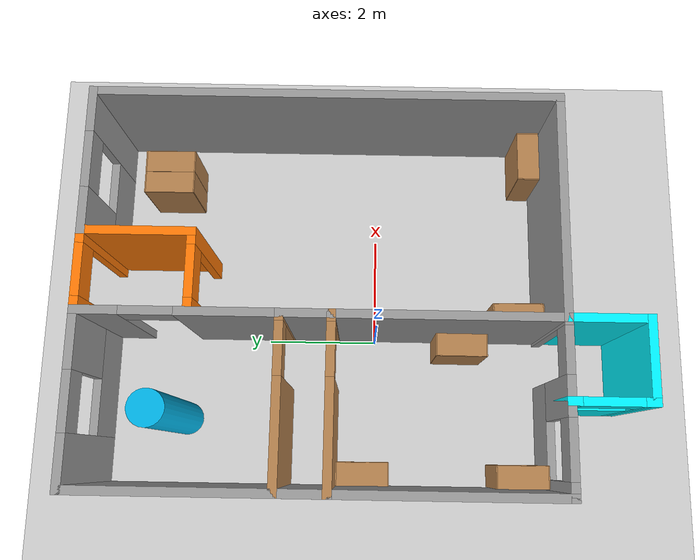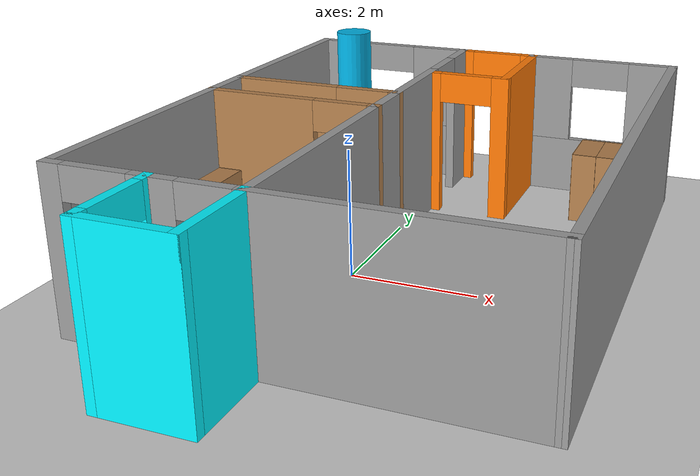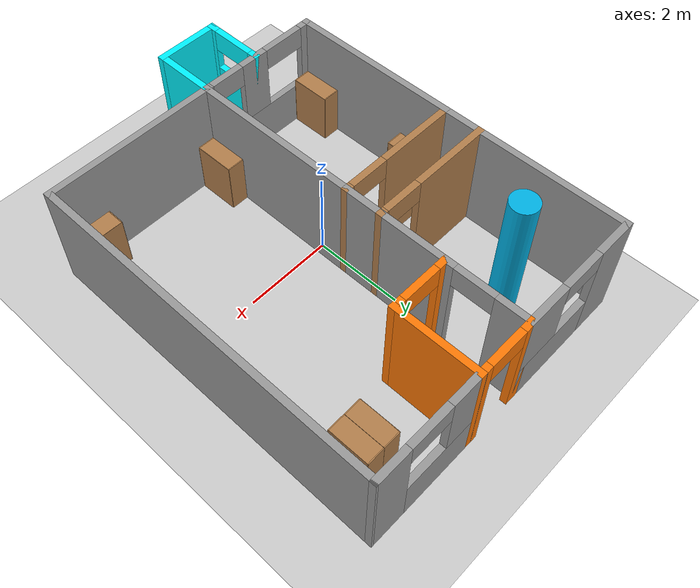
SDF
<sdf version="1.6">
 <world name="default">
  <plugin name="hello" filename="libhello.so"/>
  <light name="sun" type="directional">
   <pose>0 0 10 0 -0 0</pose>
   <diffuse>0.8 0.8 0.8 1</diffuse>
   <specular>0.2 0.2 0.2 1</specular>
   <attenuation>
    <range>1000</range>
    <constant>0.9</constant>
    <linear>0.01</linear>
    <quadratic>0.001</quadratic>
   </attenuation>
   <direction>-0.5 0.1 -0.9</direction>
  </light>
  <model name="ground_plane">
   <static>1</static>
   <link name="link">
    <collision name="collision">
     <geometry><plane><normal>0 0 1</normal><size>100 100</size></plane></geometry>
     <surface><friction><ode><mu>100</mu><mu2>50</mu2></ode></friction></surface>
    </collision>
    <visual name="visual">
     <cast_shadows>0</cast_shadows>
     <geometry><plane><normal>0 0 1</normal><size>100 100</size></plane></geometry>
     <material>
      <script><uri>file://media/materials/scripts/gazebo.material</uri><name>Gazebo/Grey</name></script>
     </material>
    </visual>
   </link>
  </model>
  <gravity>0 0 -9.8</gravity>
  <magnetic_field>6e-06 2.3e-05 -4.2e-05</magnetic_field>
  <atmosphere type="adiabatic"/>
  <physics name="default_physics" default="0" type="ode">
   <max_step_size>0.001</max_step_size>
   <real_time_factor>1</real_time_factor>
   <real_time_update_rate>1000</real_time_update_rate>
  </physics>
  <scene><ambient>0.4 0.4 0.4 1</ambient><background>0.7 0.7 0.7 1</background><shadows>1</shadows></scene>
  <spherical_coordinates>
   <surface_model>EARTH_WGS84</surface_model>
   <latitude_deg>0</latitude_deg>
   <longitude_deg>0</longitude_deg>
   <elevation>0</elevation>
   <heading_deg>0</heading_deg>
  </spherical_coordinates>
  <model name="cozyapato">
   <pose>0.612099 0.24558 0 0 -0 0</pose>
   <link name="Wall_100">
    <collision name="Wall_100_Collision">
     <geometry><box><size>1.5 0.15 2.5</size></box></geometry>
     <pose>0 0 1.25 0 -0 0</pose>
    </collision>
    <visual name="Wall_100_Visual">
     <pose>0 0 1.25 0 -0 0</pose>
     <geometry><box><size>1.5 0.15 2.5</size></box></geometry>
     <material>
      <script><uri>file://media/materials/scripts/gazebo.material</uri><name>Gazebo/Grey</name></script>
      <ambient>0 0.952941 1 1</ambient>
     </material>
     <meta><layer>0</layer></meta>
    </visual>
    <pose>-0.499933 -4.02501 0 0 0 -1.5708</pose>
   </link>
   <link name="Wall_101">
    <collision name="Wall_101_Collision">
     <geometry><box><size>1.5 0.15 2.5</size></box></geometry>
     <pose>0 0 1.25 0 -0 0</pose>
    </collision>
    <visual name="Wall_101_Visual">
     <pose>0 0 1.25 0 -0 0</pose>
     <geometry><box><size>1.5 0.15 2.5</size></box></geometry>
     <material>
      <script><uri>file://media/materials/scripts/gazebo.material</uri><name>Gazebo/Grey</name></script>
      <ambient>0 0.952941 1 1</ambient>
     </material>
     <meta><layer>0</layer></meta>
    </visual>
    <pose>-1.17493 -4.70001 0 0 -0 3.14159</pose>
   </link>
   <link name="Wall_102">
    <pose>-1.84993 -4.02501 0 0 -0 1.5708</pose>
    <visual name="Wall_102_Visual_0">
     <pose>-0.623422 0 1.25 0 -0 0</pose>
     <geometry><box><size>0.253156 0.15 2.5</size></box></geometry>
     <material>
      <script><uri>file://media/materials/scripts/gazebo.material</uri><name>Gazebo/Grey</name></script>
      <ambient>0 0.952941 1 1</ambient>
     </material>
     <meta><layer>0</layer></meta>
    </visual>
    <collision name="Wall_102_Collision_0">
     <geometry><box><size>0.253156 0.15 2.5</size></box></geometry>
     <pose>-0.623422 0 1.25 0 -0 0</pose>
    </collision>
    <visual name="Wall_102_Visual_1">
     <pose>0.126578 0 0.75 0 -0 0</pose>
     <geometry><box><size>1.24684 0.15 1.5</size></box></geometry>
     <material>
      <script><uri>file://media/materials/scripts/gazebo.material</uri><name>Gazebo/Grey</name></script>
      <ambient>0 0.952941 1 1</ambient>
     </material>
     <meta><layer>0</layer></meta>
    </visual>
    <collision name="Wall_102_Collision_1">
     <geometry><box><size>1.24684 0.15 1.5</size></box></geometry>
     <pose>0.126578 0 0.75 0 -0 0</pose>
    </collision>
    <visual name="Wall_102_Visual_2">
     <pose>0.626578 0 2 0 -0 0</pose>
     <geometry><box><size>0.246844 0.15 1</size></box></geometry>
     <material>
      <script><uri>file://media/materials/scripts/gazebo.material</uri><name>Gazebo/Grey</name></script>
      <ambient>0 0.952941 1 1</ambient>
     </material>
     <meta><layer>0</layer></meta>
    </visual>
    <collision name="Wall_102_Collision_2">
     <geometry><box><size>0.246844 0.15 1</size></box></geometry>
     <pose>0.626578 0 2 0 -0 0</pose>
    </collision>
    <visual name="Wall_102_Visual_3">
     <pose>0.003156 0 2.25 0 -0 0</pose>
     <geometry><box><size>1 0.15 0.5</size></box></geometry>
     <material>
      <script><uri>file://media/materials/scripts/gazebo.material</uri><name>Gazebo/Grey</name></script>
      <ambient>0 0.952941 1 1</ambient>
     </material>
     <meta><layer>0</layer></meta>
    </visual>
    <collision name="Wall_102_Collision_3">
     <geometry><box><size>1 0.15 0.5</size></box></geometry>
     <pose>0.003156 0 2.25 0 -0 0</pose>
    </collision>
   </link>
   <link name="Wall_108">
    <pose>0.175067 4.7 0 0 -0 0</pose>
    <visual name="Wall_108_Visual_0">
     <pose>-0.599463 0 1.25 0 -0 0</pose>
     <geometry><box><size>0.301074 0.15 2.5</size></box></geometry>
     <material>
      <script><uri>file://media/materials/scripts/gazebo.material</uri><name>Gazebo/Grey</name></script>
      <ambient>0.996078 0.47451 0.0196078 1</ambient>
     </material>
     <meta><layer>0</layer></meta>
    </visual>
    <collision name="Wall_108_Collision_0">
     <geometry><box><size>0.301074 0.15 2.5</size></box></geometry>
     <pose>-0.599463 0 1.25 0 -0 0</pose>
    </collision>
    <visual name="Wall_108_Visual_1">
     <pose>0.600537 0 1.25 0 -0 0</pose>
     <geometry><box><size>0.298926 0.15 2.5</size></box></geometry>
     <material>
      <script><uri>file://media/materials/scripts/gazebo.material</uri><name>Gazebo/Grey</name></script>
      <ambient>0.996078 0.47451 0.0196078 1</ambient>
     </material>
     <meta><layer>0</layer></meta>
    </visual>
    <collision name="Wall_108_Collision_1">
     <geometry><box><size>0.298926 0.15 2.5</size></box></geometry>
     <pose>0.600537 0 1.25 0 -0 0</pose>
    </collision>
    <visual name="Wall_108_Visual_2">
     <pose>0.001074 0 2.25 0 -0 0</pose>
     <geometry><box><size>0.9 0.15 0.5</size></box></geometry>
     <material>
      <script><uri>file://media/materials/scripts/gazebo.material</uri><name>Gazebo/Grey</name></script>
      <ambient>0.996078 0.47451 0.0196078 1</ambient>
     </material>
     <meta><layer>0</layer></meta>
    </visual>
    <collision name="Wall_108_Collision_2">
     <geometry><box><size>0.9 0.15 0.5</size></box></geometry>
     <pose>0.001074 0 2.25 0 -0 0</pose>
    </collision>
   </link>
   <link name="Wall_109">
    <collision name="Wall_109_Collision">
     <geometry><box><size>2 0.15 2.5</size></box></geometry>
     <pose>0 0 1.25 0 -0 0</pose>
    </collision>
    <visual name="Wall_109_Visual">
     <pose>0 0 1.25 0 -0 0</pose>
     <geometry><box><size>2 0.15 2.5</size></box></geometry>
     <material>
      <script><uri>file://media/materials/scripts/gazebo.material</uri><name>Gazebo/Grey</name></script>
      <ambient>0.996078 0.47451 0.0196078 1</ambient>
     </material>
     <meta><layer>0</layer></meta>
    </visual>
    <pose>0.850067 3.77499 0 0 0 -1.5708</pose>
   </link>
   <link name="Wall_110">
    <pose>0.175067 2.84999 0 0 -0 3.14159</pose>
    <visual name="Wall_110_Visual_0">
     <pose>-0.600722 0 1.25 0 -0 0</pose>
     <geometry><box><size>0.298555 0.15 2.5</size></box></geometry>
     <material>
      <script><uri>file://media/materials/scripts/gazebo.material</uri><name>Gazebo/Grey</name></script>
      <ambient>0.996078 0.47451 0.0196078 1</ambient>
     </material>
     <meta><layer>0</layer></meta>
    </visual>
    <collision name="Wall_110_Collision_0">
     <geometry><box><size>0.298555 0.15 2.5</size></box></geometry>
     <pose>-0.600722 0 1.25 0 -0 0</pose>
    </collision>
    <visual name="Wall_110_Visual_1">
     <pose>0.599278 0 1.25 0 -0 0</pose>
     <geometry><box><size>0.301445 0.15 2.5</size></box></geometry>
     <material>
      <script><uri>file://media/materials/scripts/gazebo.material</uri><name>Gazebo/Grey</name></script>
      <ambient>0.996078 0.47451 0.0196078 1</ambient>
     </material>
     <meta><layer>0</layer></meta>
    </visual>
    <collision name="Wall_110_Collision_1">
     <geometry><box><size>0.301445 0.15 2.5</size></box></geometry>
     <pose>0.599278 0 1.25 0 -0 0</pose>
    </collision>
    <visual name="Wall_110_Visual_2">
     <pose>-0.001445 0 2.25 0 -0 0</pose>
     <geometry><box><size>0.9 0.15 0.5</size></box></geometry>
     <material>
      <script><uri>file://media/materials/scripts/gazebo.material</uri><name>Gazebo/Grey</name></script>
      <ambient>0.996078 0.47451 0.0196078 1</ambient>
     </material>
     <meta><layer>0</layer></meta>
    </visual>
    <collision name="Wall_110_Collision_2">
     <geometry><box><size>0.9 0.15 0.5</size></box></geometry>
     <pose>-0.001445 0 2.25 0 -0 0</pose>
    </collision>
   </link>
   <link name="Wall_112">
    <collision name="Wall_112_Collision">
     <geometry><box><size>3.99985 0.15 2.5</size></box></geometry>
     <pose>0 0 1.25 0 -0 0</pose>
    </collision>
    <visual name="Wall_112_Visual">
     <pose>0 0 1.25 0 -0 0</pose>
     <geometry><box><size>3.99985 0.15 2.5</size></box></geometry>
     <material>
      <script><uri>file://media/materials/scripts/gazebo.material</uri><name>Gazebo/Grey</name></script>
      <ambient>1 1 1 1</ambient>
     </material>
     <meta><layer>0</layer></meta>
    </visual>
    <pose>1.42499 -3.3502 0 0 0 -0.000101</pose>
   </link>
   <link name="Wall_113">
    <collision name="Wall_113_Collision">
     <geometry><box><size>8.2 0.15 2.5</size></box></geometry>
     <pose>0 0 1.25 0 -0 0</pose>
    </collision>
    <visual name="Wall_113_Visual">
     <pose>0 0 1.25 0 -0 0</pose>
     <geometry><box><size>8.2 0.15 2.5</size></box></geometry>
     <material>
      <script><uri>file://media/materials/scripts/gazebo.material</uri><name>Gazebo/Grey</name></script>
      <ambient>1 1 1 1</ambient>
     </material>
     <meta><layer>0</layer></meta>
    </visual>
    <pose>3.34992 0.674605 0 0 -0 1.5708</pose>
   </link>
   <link name="Wall_115">
    <pose>2.09999 4.6998 0 0 -0 3.14144</pose>
    <visual name="Wall_115_Visual_0">
     <pose>-0.912211 0 1.25 0 -0 0</pose>
     <geometry><box><size>0.825433 0.15 2.5</size></box></geometry>
     <material>
      <script><uri>file://media/materials/scripts/gazebo.material</uri><name>Gazebo/Grey</name></script>
      <ambient>1 1 1 1</ambient>
     </material>
     <meta><layer>0</layer></meta>
    </visual>
    <collision name="Wall_115_Collision_0">
     <geometry><box><size>0.825433 0.15 2.5</size></box></geometry>
     <pose>-0.912211 0 1.25 0 -0 0</pose>
    </collision>
    <visual name="Wall_115_Visual_1">
     <pose>0.412716 0 0.5 0 -0 0</pose>
     <geometry><box><size>1.82442 0.15 1</size></box></geometry>
     <material>
      <script><uri>file://media/materials/scripts/gazebo.material</uri><name>Gazebo/Grey</name></script>
      <ambient>1 1 1 1</ambient>
     </material>
     <meta><layer>0</layer></meta>
    </visual>
    <collision name="Wall_115_Collision_1">
     <geometry><box><size>1.82442 0.15 1</size></box></geometry>
     <pose>0.412716 0 0.5 0 -0 0</pose>
    </collision>
    <visual name="Wall_115_Visual_2">
     <pose>0.912716 0 1.75 0 -0 0</pose>
     <geometry><box><size>0.824421 0.15 1.5</size></box></geometry>
     <material>
      <script><uri>file://media/materials/scripts/gazebo.material</uri><name>Gazebo/Grey</name></script>
      <ambient>1 1 1 1</ambient>
     </material>
     <meta><layer>0</layer></meta>
    </visual>
    <collision name="Wall_115_Collision_2">
     <geometry><box><size>0.824421 0.15 1.5</size></box></geometry>
     <pose>0.912716 0 1.75 0 -0 0</pose>
    </collision>
    <visual name="Wall_115_Visual_3">
     <pose>0.000506 0 2.25 0 -0 0</pose>
     <geometry><box><size>1 0.15 0.5</size></box></geometry>
     <material>
      <script><uri>file://media/materials/scripts/gazebo.material</uri><name>Gazebo/Grey</name></script>
      <ambient>1 1 1 1</ambient>
     </material>
     <meta><layer>0</layer></meta>
    </visual>
    <collision name="Wall_115_Collision_3">
     <geometry><box><size>1 0.15 0.5</size></box></geometry>
     <pose>0.000506 0 2.25 0 -0 0</pose>
    </collision>
   </link>
   <link name="Wall_87">
    <pose>-1.92493 4.7 0 0 -0 0</pose>
    <visual name="Wall_87_Visual_0">
     <pose>-1.02631 0 1.25 0 -0 0</pose>
     <geometry><box><size>0.947379 0.15 2.5</size></box></geometry>
     <material>
      <script><uri>file://media/materials/scripts/gazebo.material</uri><name>Gazebo/Grey</name></script>
      <ambient>1 1 1 1</ambient>
     </material>
     <meta><layer>0</layer></meta>
    </visual>
    <collision name="Wall_87_Collision_0">
     <geometry><box><size>0.947379 0.15 2.5</size></box></geometry>
     <pose>-1.02631 0 1.25 0 -0 0</pose>
    </collision>
    <visual name="Wall_87_Visual_1">
     <pose>0.473689 0 0.5 0 -0 0</pose>
     <geometry><box><size>2.05262 0.15 1</size></box></geometry>
     <material>
      <script><uri>file://media/materials/scripts/gazebo.material</uri><name>Gazebo/Grey</name></script>
      <ambient>1 1 1 1</ambient>
     </material>
     <meta><layer>0</layer></meta>
    </visual>
    <collision name="Wall_87_Collision_1">
     <geometry><box><size>2.05262 0.15 1</size></box></geometry>
     <pose>0.473689 0 0.5 0 -0 0</pose>
    </collision>
    <visual name="Wall_87_Visual_2">
     <pose>0.973689 0 1.75 0 -0 0</pose>
     <geometry><box><size>1.05262 0.15 1.5</size></box></geometry>
     <material>
      <script><uri>file://media/materials/scripts/gazebo.material</uri><name>Gazebo/Grey</name></script>
      <ambient>1 1 1 1</ambient>
     </material>
     <meta><layer>0</layer></meta>
    </visual>
    <collision name="Wall_87_Collision_2">
     <geometry><box><size>1.05262 0.15 1.5</size></box></geometry>
     <pose>0.973689 0 1.75 0 -0 0</pose>
    </collision>
    <visual name="Wall_87_Visual_3">
     <pose>-0.052621 0 2.25 0 -0 0</pose>
     <geometry><box><size>1 0.15 0.5</size></box></geometry>
     <material>
      <script><uri>file://media/materials/scripts/gazebo.material</uri><name>Gazebo/Grey</name></script>
      <ambient>1 1 1 1</ambient>
     </material>
     <meta><layer>0</layer></meta>
    </visual>
    <collision name="Wall_87_Collision_3">
     <geometry><box><size>1 0.15 0.5</size></box></geometry>
     <pose>-0.052621 0 2.25 0 -0 0</pose>
    </collision>
   </link>
   <link name="Wall_88">
    <pose>-0.499933 3.02499 0 0 0 -1.5708</pose>
    <visual name="Wall_88_Visual_0">
     <pose>-1.35034 0 1.25 0 -0 0</pose>
     <geometry><box><size>0.799327 0.15 2.5</size></box></geometry>
     <material>
      <script><uri>file://media/materials/scripts/gazebo.material</uri><name>Gazebo/Grey</name></script>
      <ambient>1 1 1 1</ambient>
     </material>
     <meta><layer>0</layer></meta>
    </visual>
    <collision name="Wall_88_Collision_0">
     <geometry><box><size>0.799327 0.15 2.5</size></box></geometry>
     <pose>-1.35034 0 1.25 0 -0 0</pose>
    </collision>
    <visual name="Wall_88_Visual_1">
     <pose>0.849663 0 1.25 0 -0 0</pose>
     <geometry><box><size>1.80067 0.15 2.5</size></box></geometry>
     <material>
      <script><uri>file://media/materials/scripts/gazebo.material</uri><name>Gazebo/Grey</name></script>
      <ambient>1 1 1 1</ambient>
     </material>
     <meta><layer>0</layer></meta>
    </visual>
    <collision name="Wall_88_Collision_1">
     <geometry><box><size>1.80067 0.15 2.5</size></box></geometry>
     <pose>0.849663 0 1.25 0 -0 0</pose>
    </collision>
    <visual name="Wall_88_Visual_2">
     <pose>-0.500673 0 2.25 0 -0 0</pose>
     <geometry><box><size>0.9 0.15 0.5</size></box></geometry>
     <material>
      <script><uri>file://media/materials/scripts/gazebo.material</uri><name>Gazebo/Grey</name></script>
      <ambient>1 1 1 1</ambient>
     </material>
     <meta><layer>0</layer></meta>
    </visual>
    <collision name="Wall_88_Collision_2">
     <geometry><box><size>0.9 0.15 0.5</size></box></geometry>
     <pose>-0.500673 0 2.25 0 -0 0</pose>
    </collision>
   </link>
   <link name="Wall_89">
    <pose>-1.92493 1.34999 0 0 -0 3.14159</pose>
    <visual name="Wall_89_Visual_0">
     <pose>-1.4003 0 1.25 0 -0 0</pose>
     <geometry><box><size>0.199399 0.15 2.5</size></box></geometry>
     <material>
      <script><uri>file://media/materials/scripts/gazebo.material</uri><name>Gazebo/Wood</name></script>
      <ambient>1 1 1 1</ambient>
     </material>
     <meta><layer>0</layer></meta>
    </visual>
    <collision name="Wall_89_Collision_0">
     <geometry><box><size>0.199399 0.15 2.5</size></box></geometry>
     <pose>-1.4003 0 1.25 0 -0 0</pose>
    </collision>
    <visual name="Wall_89_Visual_1">
     <pose>0.549699 0 1.25 0 -0 0</pose>
     <geometry><box><size>1.9006 0.15 2.5</size></box></geometry>
     <material>
      <script><uri>file://media/materials/scripts/gazebo.material</uri><name>Gazebo/Wood</name></script>
      <ambient>1 1 1 1</ambient>
     </material>
     <meta><layer>0</layer></meta>
    </visual>
    <collision name="Wall_89_Collision_1">
     <geometry><box><size>1.9006 0.15 2.5</size></box></geometry>
     <pose>0.549699 0 1.25 0 -0 0</pose>
    </collision>
    <visual name="Wall_89_Visual_2">
     <pose>-0.850601 0 2.25 0 -0 0</pose>
     <geometry><box><size>0.9 0.15 0.5</size></box></geometry>
     <material>
      <script><uri>file://media/materials/scripts/gazebo.material</uri><name>Gazebo/Wood</name></script>
      <ambient>1 1 1 1</ambient>
     </material>
     <meta><layer>0</layer></meta>
    </visual>
    <collision name="Wall_89_Collision_2">
     <geometry><box><size>0.9 0.15 0.5</size></box></geometry>
     <pose>-0.850601 0 2.25 0 -0 0</pose>
    </collision>
   </link>
   <link name="Wall_90">
    <collision name="Wall_90_Collision">
     <geometry><box><size>3.5 0.15 2.5</size></box></geometry>
     <pose>0 0 1.25 0 -0 0</pose>
    </collision>
    <visual name="Wall_90_Visual">
     <pose>0 0 1.25 0 -0 0</pose>
     <geometry><box><size>3.5 0.15 2.5</size></box></geometry>
     <material>
      <script><uri>file://media/materials/scripts/gazebo.material</uri><name>Gazebo/Grey</name></script>
      <ambient>1 1 1 1</ambient>
     </material>
     <meta><layer>0</layer></meta>
    </visual>
    <pose>-3.34993 3.02499 0 0 -0 1.5708</pose>
   </link>
   <link name="Wall_92">
    <collision name="Wall_92_Collision">
     <geometry><box><size>1 0.15 2.5</size></box></geometry>
     <pose>0 0 1.25 0 -0 0</pose>
    </collision>
    <visual name="Wall_92_Visual">
     <pose>0 0 1.25 0 -0 0</pose>
     <geometry><box><size>1 0.15 2.5</size></box></geometry>
     <material>
      <script><uri>file://media/materials/scripts/gazebo.material</uri><name>Gazebo/Grey</name></script>
      <ambient>1 1 1 1</ambient>
     </material>
     <meta><layer>0</layer></meta>
    </visual>
    <pose>-3.34993 0.924994 0 0 0 -1.5708</pose>
   </link>
   <link name="Wall_93">
    <pose>-1.92493 0.499994 0 0 -0 0</pose>
    <visual name="Wall_93_Visual_0">
     <pose>-0.551343 0 1.25 0 -0 0</pose>
     <geometry><box><size>1.89731 0.15 2.5</size></box></geometry>
     <material>
      <script><uri>file://media/materials/scripts/gazebo.material</uri><name>Gazebo/Wood</name></script>
      <ambient>1 1 1 1</ambient>
     </material>
     <meta><layer>0</layer></meta>
    </visual>
    <collision name="Wall_93_Collision_0">
     <geometry><box><size>1.89731 0.15 2.5</size></box></geometry>
     <pose>-0.551343 0 1.25 0 -0 0</pose>
    </collision>
    <visual name="Wall_93_Visual_1">
     <pose>1.39866 0 1.25 0 -0 0</pose>
     <geometry><box><size>0.202686 0.15 2.5</size></box></geometry>
     <material>
      <script><uri>file://media/materials/scripts/gazebo.material</uri><name>Gazebo/Wood</name></script>
      <ambient>1 1 1 1</ambient>
     </material>
     <meta><layer>0</layer></meta>
    </visual>
    <collision name="Wall_93_Collision_1">
     <geometry><box><size>0.202686 0.15 2.5</size></box></geometry>
     <pose>1.39866 0 1.25 0 -0 0</pose>
    </collision>
    <visual name="Wall_93_Visual_2">
     <pose>0.847314 0 2.25 0 -0 0</pose>
     <geometry><box><size>0.9 0.15 0.5</size></box></geometry>
     <material>
      <script><uri>file://media/materials/scripts/gazebo.material</uri><name>Gazebo/Wood</name></script>
      <ambient>1 1 1 1</ambient>
     </material>
     <meta><layer>0</layer></meta>
    </visual>
    <collision name="Wall_93_Collision_2">
     <geometry><box><size>0.9 0.15 0.5</size></box></geometry>
     <pose>0.847314 0 2.25 0 -0 0</pose>
    </collision>
   </link>
   <link name="Wall_94">
    <collision name="Wall_94_Collision">
     <geometry><box><size>1 0.15 2.5</size></box></geometry>
     <pose>0 0 1.25 0 -0 0</pose>
    </collision>
    <visual name="Wall_94_Visual">
     <pose>0 0 1.25 0 -0 0</pose>
     <geometry><box><size>1 0.15 2.5</size></box></geometry>
     <material>
      <script><uri>file://media/materials/scripts/gazebo.material</uri><name>Gazebo/Grey</name></script>
      <ambient>1 1 1 1</ambient>
     </material>
     <meta><layer>0</layer></meta>
    </visual>
    <pose>-0.499933 0.924994 0 0 -0 1.5708</pose>
   </link>
   <link name="Wall_96">
    <collision name="Wall_96_Collision">
     <geometry><box><size>4 0.15 2.5</size></box></geometry>
     <pose>0 0 1.25 0 -0 0</pose>
    </collision>
    <visual name="Wall_96_Visual">
     <pose>0 0 1.25 0 -0 0</pose>
     <geometry><box><size>4 0.15 2.5</size></box></geometry>
     <material>
      <script><uri>file://media/materials/scripts/gazebo.material</uri><name>Gazebo/Grey</name></script>
      <ambient>1 1 1 1</ambient>
     </material>
     <meta><layer>0</layer></meta>
    </visual>
    <pose>-3.34993 -1.42501 0 0 0 -1.5708</pose>
   </link>
   <link name="Wall_97">
    <pose>-1.92493 -3.35001 0 0 -0 0</pose>
    <visual name="Wall_97_Visual_0">
     <pose>-1.33807 0 1.25 0 -0 0</pose>
     <geometry><box><size>0.323858 0.15 2.5</size></box></geometry>
     <material>
      <script><uri>file://media/materials/scripts/gazebo.material</uri><name>Gazebo/Grey</name></script>
      <ambient>1 1 1 1</ambient>
     </material>
     <meta><layer>0</layer></meta>
    </visual>
    <collision name="Wall_97_Collision_0">
     <geometry><box><size>0.323858 0.15 2.5</size></box></geometry>
     <pose>-1.33807 0 1.25 0 -0 0</pose>
    </collision>
    <visual name="Wall_97_Visual_1">
     <pose>1.40031 0 1.25 0 -0 0</pose>
     <geometry><box><size>0.199375 0.15 2.5</size></box></geometry>
     <material>
      <script><uri>file://media/materials/scripts/gazebo.material</uri><name>Gazebo/Grey</name></script>
      <ambient>1 1 1 1</ambient>
     </material>
     <meta><layer>0</layer></meta>
    </visual>
    <collision name="Wall_97_Collision_1">
     <geometry><box><size>0.199375 0.15 2.5</size></box></geometry>
     <pose>1.40031 0 1.25 0 -0 0</pose>
    </collision>
    <visual name="Wall_97_Visual_2">
     <pose>-0.337758 0 0.5 0 -0 0</pose>
     <geometry><box><size>1.67677 0.15 1</size></box></geometry>
     <material>
      <script><uri>file://media/materials/scripts/gazebo.material</uri><name>Gazebo/Grey</name></script>
      <ambient>1 1 1 1</ambient>
     </material>
     <meta><layer>0</layer></meta>
    </visual>
    <collision name="Wall_97_Collision_2">
     <geometry><box><size>1.67677 0.15 1</size></box></geometry>
     <pose>-0.337758 0 0.5 0 -0 0</pose>
    </collision>
    <visual name="Wall_97_Visual_3">
     <pose>0.162242 0 1.75 0 -0 0</pose>
     <geometry><box><size>0.676767 0.15 1.5</size></box></geometry>
     <material>
      <script><uri>file://media/materials/scripts/gazebo.material</uri><name>Gazebo/Grey</name></script>
      <ambient>1 1 1 1</ambient>
     </material>
     <meta><layer>0</layer></meta>
    </visual>
    <collision name="Wall_97_Collision_3">
     <geometry><box><size>0.676767 0.15 1.5</size></box></geometry>
     <pose>0.162242 0 1.75 0 -0 0</pose>
    </collision>
    <visual name="Wall_97_Visual_4">
     <pose>-0.676142 0 2.25 0 -0 0</pose>
     <geometry><box><size>1 0.15 0.5</size></box></geometry>
     <material>
      <script><uri>file://media/materials/scripts/gazebo.material</uri><name>Gazebo/Grey</name></script>
      <ambient>1 1 1 1</ambient>
     </material>
     <meta><layer>0</layer></meta>
    </visual>
    <collision name="Wall_97_Collision_4">
     <geometry><box><size>1 0.15 0.5</size></box></geometry>
     <pose>-0.676142 0 2.25 0 -0 0</pose>
    </collision>
    <visual name="Wall_97_Visual_5">
     <pose>0.900625 0 2.25 0 -0 0</pose>
     <geometry><box><size>0.8 0.15 0.5</size></box></geometry>
     <material>
      <script><uri>file://media/materials/scripts/gazebo.material</uri><name>Gazebo/Grey</name></script>
      <ambient>1 1 1 1</ambient>
     </material>
     <meta><layer>0</layer></meta>
    </visual>
    <collision name="Wall_97_Collision_5">
     <geometry><box><size>0.8 0.15 0.5</size></box></geometry>
     <pose>0.900625 0 2.25 0 -0 0</pose>
    </collision>
   </link>
   <link name="Wall_98">
    <collision name="Wall_98_Collision">
     <geometry><box><size>4 0.15 2.5</size></box></geometry>
     <pose>0 0 1.25 0 -0 0</pose>
    </collision>
    <visual name="Wall_98_Visual">
     <pose>0 0 1.25 0 -0 0</pose>
     <geometry><box><size>4 0.15 2.5</size></box></geometry>
     <material>
      <script><uri>file://media/materials/scripts/gazebo.material</uri><name>Gazebo/Grey</name></script>
      <ambient>1 1 1 1</ambient>
     </material>
     <meta><layer>0</layer></meta>
    </visual>
    <pose>-0.499933 -1.42501 0 0 -0 1.5708</pose>
   </link>
   <static>1</static>
  </model>
  <model name="bookshelf_0">
   <static>1</static>
   <link name="link">
    <inertial><mass>1</mass></inertial>
    <collision name="back">
     <pose>0 0.005 0.6 0 -0 0</pose>
     <geometry><box><size>0.9 0.01 1.2</size></box></geometry>
    </collision>
    <visual name="visual1">
     <pose>0 0.005 0.6 0 -0 0</pose>
     <geometry><box><size>0.9 0.01 1.2</size></box></geometry>
     <material>
      <script><uri>file://media/materials/scripts/gazebo.material</uri><name>Gazebo/Wood</name></script>
     </material>
    </visual>
    <collision name="left_side">
     <pose>0.45 -0.195 0.6 0 -0 0</pose>
     <geometry><box><size>0.02 0.4 1.2</size></box></geometry>
    </collision>
    <visual name="visual2">
     <pose>0.45 -0.195 0.6 0 -0 0</pose>
     <geometry><box><size>0.02 0.4 1.2</size></box></geometry>
     <material>
      <script><uri>file://media/materials/scripts/gazebo.material</uri><name>Gazebo/Wood</name></script>
     </material>
    </visual>
    <collision name="right_side">
     <pose>-0.45 -0.195 0.6 0 -0 0</pose>
     <geometry><box><size>0.02 0.4 1.2</size></box></geometry>
    </collision>
    <visual name="visual3">
     <pose>-0.45 -0.195 0.6 0 -0 0</pose>
     <geometry><box><size>0.02 0.4 1.2</size></box></geometry>
     <material>
      <script><uri>file://media/materials/scripts/gazebo.material</uri><name>Gazebo/Wood</name></script>
     </material>
    </visual>
    <collision name="bottom">
     <pose>0 -0.195 0.03 0 -0 0</pose>
     <geometry><box><size>0.88 0.4 0.06</size></box></geometry>
    </collision>
    <visual name="visual4">
     <pose>0 -0.195 0.03 0 -0 0</pose>
     <geometry><box><size>0.88 0.4 0.06</size></box></geometry>
     <material>
      <script><uri>file://media/materials/scripts/gazebo.material</uri><name>Gazebo/Wood</name></script>
     </material>
    </visual>
    <collision name="top">
     <pose>0 -0.195 1.19 0 -0 0</pose>
     <geometry><box><size>0.88 0.4 0.02</size></box></geometry>
    </collision>
    <visual name="visual5">
     <pose>0 -0.195 1.19 0 -0 0</pose>
     <geometry><box><size>0.88 0.4 0.02</size></box></geometry>
     <material>
      <script><uri>file://media/materials/scripts/gazebo.material</uri><name>Gazebo/Wood</name></script>
     </material>
    </visual>
    <collision name="low_shelf">
     <pose>0 -0.195 0.43 0 -0 0</pose>
     <geometry><box><size>0.88 0.4 0.02</size></box></geometry>
    </collision>
    <visual name="visual6">
     <pose>0 -0.195 0.43 0 -0 0</pose>
     <geometry><box><size>0.88 0.4 0.02</size></box></geometry>
     <material>
      <script><uri>file://media/materials/scripts/gazebo.material</uri><name>Gazebo/Wood</name></script>
     </material>
    </visual>
    <collision name="high_shelf">
     <pose>0 -0.195 0.8 0 -0 0</pose>
     <geometry><box><size>0.88 0.4 0.02</size></box></geometry>
    </collision>
    <visual name="visual7">
     <pose>0 -0.195 0.8 0 -0 0</pose>
     <geometry><box><size>0.88 0.4 0.02</size></box></geometry>
     <material>
      <script><uri>file://media/materials/scripts/gazebo.material</uri><name>Gazebo/Wood</name></script>
     </material>
    </visual>
   </link>
   <pose>3.41299 -2.61403 0 0 -0 0</pose>
  </model>
  <model name="bookshelf_0_clone">
   <static>1</static>
   <link name="link">
    <inertial><mass>1</mass></inertial>
    <collision name="back">
     <pose>0 0.005 0.6 0 -0 0</pose>
     <geometry><box><size>0.9 0.01 1.2</size></box></geometry>
    </collision>
    <visual name="visual1">
     <pose>0 0.005 0.6 0 -0 0</pose>
     <geometry><box><size>0.9 0.01 1.2</size></box></geometry>
     <material>
      <script><uri>file://media/materials/scripts/gazebo.material</uri><name>Gazebo/Wood</name></script>
     </material>
    </visual>
    <collision name="left_side">
     <pose>0.45 -0.195 0.6 0 -0 0</pose>
     <geometry><box><size>0.02 0.4 1.2</size></box></geometry>
    </collision>
    <visual name="visual2">
     <pose>0.45 -0.195 0.6 0 -0 0</pose>
     <geometry><box><size>0.02 0.4 1.2</size></box></geometry>
     <material>
      <script><uri>file://media/materials/scripts/gazebo.material</uri><name>Gazebo/Wood</name></script>
     </material>
    </visual>
    <collision name="right_side">
     <pose>-0.45 -0.195 0.6 0 -0 0</pose>
     <geometry><box><size>0.02 0.4 1.2</size></box></geometry>
    </collision>
    <visual name="visual3">
     <pose>-0.45 -0.195 0.6 0 -0 0</pose>
     <geometry><box><size>0.02 0.4 1.2</size></box></geometry>
     <material>
      <script><uri>file://media/materials/scripts/gazebo.material</uri><name>Gazebo/Wood</name></script>
     </material>
    </visual>
    <collision name="bottom">
     <pose>0 -0.195 0.03 0 -0 0</pose>
     <geometry><box><size>0.88 0.4 0.06</size></box></geometry>
    </collision>
    <visual name="visual4">
     <pose>0 -0.195 0.03 0 -0 0</pose>
     <geometry><box><size>0.88 0.4 0.06</size></box></geometry>
     <material>
      <script><uri>file://media/materials/scripts/gazebo.material</uri><name>Gazebo/Wood</name></script>
     </material>
    </visual>
    <collision name="top">
     <pose>0 -0.195 1.19 0 -0 0</pose>
     <geometry><box><size>0.88 0.4 0.02</size></box></geometry>
    </collision>
    <visual name="visual5">
     <pose>0 -0.195 1.19 0 -0 0</pose>
     <geometry><box><size>0.88 0.4 0.02</size></box></geometry>
     <material>
      <script><uri>file://media/materials/scripts/gazebo.material</uri><name>Gazebo/Wood</name></script>
     </material>
    </visual>
    <collision name="low_shelf">
     <pose>0 -0.195 0.43 0 -0 0</pose>
     <geometry><box><size>0.88 0.4 0.02</size></box></geometry>
    </collision>
    <visual name="visual6">
     <pose>0 -0.195 0.43 0 -0 0</pose>
     <geometry><box><size>0.88 0.4 0.02</size></box></geometry>
     <material>
      <script><uri>file://media/materials/scripts/gazebo.material</uri><name>Gazebo/Wood</name></script>
     </material>
    </visual>
    <collision name="high_shelf">
     <pose>0 -0.195 0.8 0 -0 0</pose>
     <geometry><box><size>0.88 0.4 0.02</size></box></geometry>
    </collision>
    <visual name="visual7">
     <pose>0 -0.195 0.8 0 -0 0</pose>
     <geometry><box><size>0.88 0.4 0.02</size></box></geometry>
     <material>
      <script><uri>file://media/materials/scripts/gazebo.material</uri><name>Gazebo/Wood</name></script>
     </material>
    </visual>
   </link>
   <pose>0.586244 -2.5605 0 0 0 -1.56407</pose>
  </model>
  <model name="bookshelf_0_clone_clone">
   <static>1</static>
   <link name="link">
    <inertial><mass>1</mass></inertial>
    <collision name="back">
     <pose>0 0.005 0.6 0 -0 0</pose>
     <geometry><box><size>0.9 0.01 1.2</size></box></geometry>
    </collision>
    <visual name="visual1">
     <pose>0 0.005 0.6 0 -0 0</pose>
     <geometry><box><size>0.9 0.01 1.2</size></box></geometry>
     <material>
      <script><uri>file://media/materials/scripts/gazebo.material</uri><name>Gazebo/Wood</name></script>
     </material>
    </visual>
    <collision name="left_side">
     <pose>0.45 -0.195 0.6 0 -0 0</pose>
     <geometry><box><size>0.02 0.4 1.2</size></box></geometry>
    </collision>
    <visual name="visual2">
     <pose>0.45 -0.195 0.6 0 -0 0</pose>
     <geometry><box><size>0.02 0.4 1.2</size></box></geometry>
     <material>
      <script><uri>file://media/materials/scripts/gazebo.material</uri><name>Gazebo/Wood</name></script>
     </material>
    </visual>
    <collision name="right_side">
     <pose>-0.45 -0.195 0.6 0 -0 0</pose>
     <geometry><box><size>0.02 0.4 1.2</size></box></geometry>
    </collision>
    <visual name="visual3">
     <pose>-0.45 -0.195 0.6 0 -0 0</pose>
     <geometry><box><size>0.02 0.4 1.2</size></box></geometry>
     <material>
      <script><uri>file://media/materials/scripts/gazebo.material</uri><name>Gazebo/Wood</name></script>
     </material>
    </visual>
    <collision name="bottom">
     <pose>0 -0.195 0.03 0 -0 0</pose>
     <geometry><box><size>0.88 0.4 0.06</size></box></geometry>
    </collision>
    <visual name="visual4">
     <pose>0 -0.195 0.03 0 -0 0</pose>
     <geometry><box><size>0.88 0.4 0.06</size></box></geometry>
     <material>
      <script><uri>file://media/materials/scripts/gazebo.material</uri><name>Gazebo/Wood</name></script>
     </material>
    </visual>
    <collision name="top">
     <pose>0 -0.195 1.19 0 -0 0</pose>
     <geometry><box><size>0.88 0.4 0.02</size></box></geometry>
    </collision>
    <visual name="visual5">
     <pose>0 -0.195 1.19 0 -0 0</pose>
     <geometry><box><size>0.88 0.4 0.02</size></box></geometry>
     <material>
      <script><uri>file://media/materials/scripts/gazebo.material</uri><name>Gazebo/Wood</name></script>
     </material>
    </visual>
    <collision name="low_shelf">
     <pose>0 -0.195 0.43 0 -0 0</pose>
     <geometry><box><size>0.88 0.4 0.02</size></box></geometry>
    </collision>
    <visual name="visual6">
     <pose>0 -0.195 0.43 0 -0 0</pose>
     <geometry><box><size>0.88 0.4 0.02</size></box></geometry>
     <material>
      <script><uri>file://media/materials/scripts/gazebo.material</uri><name>Gazebo/Wood</name></script>
     </material>
    </visual>
    <collision name="high_shelf">
     <pose>0 -0.195 0.8 0 -0 0</pose>
     <geometry><box><size>0.88 0.4 0.02</size></box></geometry>
    </collision>
    <visual name="visual7">
     <pose>0 -0.195 0.8 0 -0 0</pose>
     <geometry><box><size>0.88 0.4 0.02</size></box></geometry>
     <material>
      <script><uri>file://media/materials/scripts/gazebo.material</uri><name>Gazebo/Wood</name></script>
     </material>
    </visual>
   </link>
   <pose>-0.366984 -1.53344 0 0 -0 1.56627</pose>
  </model>
  <model name="bookshelf_0_clone_clone_0">
   <static>1</static>
   <link name="link">
    <inertial><mass>1</mass></inertial>
    <collision name="back">
     <pose>0 0.005 0.6 0 -0 0</pose>
     <geometry><box><size>0.9 0.01 1.2</size></box></geometry>
    </collision>
    <visual name="visual1">
     <pose>0 0.005 0.6 0 -0 0</pose>
     <geometry><box><size>0.9 0.01 1.2</size></box></geometry>
     <material>
      <script><uri>file://media/materials/scripts/gazebo.material</uri><name>Gazebo/Wood</name></script>
     </material>
    </visual>
    <collision name="left_side">
     <pose>0.45 -0.195 0.6 0 -0 0</pose>
     <geometry><box><size>0.02 0.4 1.2</size></box></geometry>
    </collision>
    <visual name="visual2">
     <pose>0.45 -0.195 0.6 0 -0 0</pose>
     <geometry><box><size>0.02 0.4 1.2</size></box></geometry>
     <material>
      <script><uri>file://media/materials/scripts/gazebo.material</uri><name>Gazebo/Wood</name></script>
     </material>
    </visual>
    <collision name="right_side">
     <pose>-0.45 -0.195 0.6 0 -0 0</pose>
     <geometry><box><size>0.02 0.4 1.2</size></box></geometry>
    </collision>
    <visual name="visual3">
     <pose>-0.45 -0.195 0.6 0 -0 0</pose>
     <geometry><box><size>0.02 0.4 1.2</size></box></geometry>
     <material>
      <script><uri>file://media/materials/scripts/gazebo.material</uri><name>Gazebo/Wood</name></script>
     </material>
    </visual>
    <collision name="bottom">
     <pose>0 -0.195 0.03 0 -0 0</pose>
     <geometry><box><size>0.88 0.4 0.06</size></box></geometry>
    </collision>
    <visual name="visual4">
     <pose>0 -0.195 0.03 0 -0 0</pose>
     <geometry><box><size>0.88 0.4 0.06</size></box></geometry>
     <material>
      <script><uri>file://media/materials/scripts/gazebo.material</uri><name>Gazebo/Wood</name></script>
     </material>
    </visual>
    <collision name="top">
     <pose>0 -0.195 1.19 0 -0 0</pose>
     <geometry><box><size>0.88 0.4 0.02</size></box></geometry>
    </collision>
    <visual name="visual5">
     <pose>0 -0.195 1.19 0 -0 0</pose>
     <geometry><box><size>0.88 0.4 0.02</size></box></geometry>
     <material>
      <script><uri>file://media/materials/scripts/gazebo.material</uri><name>Gazebo/Wood</name></script>
     </material>
    </visual>
    <collision name="low_shelf">
     <pose>0 -0.195 0.43 0 -0 0</pose>
     <geometry><box><size>0.88 0.4 0.02</size></box></geometry>
    </collision>
    <visual name="visual6">
     <pose>0 -0.195 0.43 0 -0 0</pose>
     <geometry><box><size>0.88 0.4 0.02</size></box></geometry>
     <material>
      <script><uri>file://media/materials/scripts/gazebo.material</uri><name>Gazebo/Wood</name></script>
     </material>
    </visual>
    <collision name="high_shelf">
     <pose>0 -0.195 0.8 0 -0 0</pose>
     <geometry><box><size>0.88 0.4 0.02</size></box></geometry>
    </collision>
    <visual name="visual7">
     <pose>0 -0.195 0.8 0 -0 0</pose>
     <geometry><box><size>0.88 0.4 0.02</size></box></geometry>
     <material>
      <script><uri>file://media/materials/scripts/gazebo.material</uri><name>Gazebo/Wood</name></script>
     </material>
    </visual>
   </link>
   <pose>3.39204 3.86707 0 0 0 -1.56407</pose>
  </model>
  <model name="bookshelf_0_clone_clone_1">
   <static>1</static>
   <link name="link">
    <inertial><mass>1</mass></inertial>
    <collision name="back">
     <pose>0 0.005 0.6 0 -0 0</pose>
     <geometry><box><size>0.9 0.01 1.2</size></box></geometry>
    </collision>
    <visual name="visual1">
     <pose>0 0.005 0.6 0 -0 0</pose>
     <geometry><box><size>0.9 0.01 1.2</size></box></geometry>
     <material>
      <script><uri>file://media/materials/scripts/gazebo.material</uri><name>Gazebo/Wood</name></script>
     </material>
    </visual>
    <collision name="left_side">
     <pose>0.45 -0.195 0.6 0 -0 0</pose>
     <geometry><box><size>0.02 0.4 1.2</size></box></geometry>
    </collision>
    <visual name="visual2">
     <pose>0.45 -0.195 0.6 0 -0 0</pose>
     <geometry><box><size>0.02 0.4 1.2</size></box></geometry>
     <material>
      <script><uri>file://media/materials/scripts/gazebo.material</uri><name>Gazebo/Wood</name></script>
     </material>
    </visual>
    <collision name="right_side">
     <pose>-0.45 -0.195 0.6 0 -0 0</pose>
     <geometry><box><size>0.02 0.4 1.2</size></box></geometry>
    </collision>
    <visual name="visual3">
     <pose>-0.45 -0.195 0.6 0 -0 0</pose>
     <geometry><box><size>0.02 0.4 1.2</size></box></geometry>
     <material>
      <script><uri>file://media/materials/scripts/gazebo.material</uri><name>Gazebo/Wood</name></script>
     </material>
    </visual>
    <collision name="bottom">
     <pose>0 -0.195 0.03 0 -0 0</pose>
     <geometry><box><size>0.88 0.4 0.06</size></box></geometry>
    </collision>
    <visual name="visual4">
     <pose>0 -0.195 0.03 0 -0 0</pose>
     <geometry><box><size>0.88 0.4 0.06</size></box></geometry>
     <material>
      <script><uri>file://media/materials/scripts/gazebo.material</uri><name>Gazebo/Wood</name></script>
     </material>
    </visual>
    <collision name="top">
     <pose>0 -0.195 1.19 0 -0 0</pose>
     <geometry><box><size>0.88 0.4 0.02</size></box></geometry>
    </collision>
    <visual name="visual5">
     <pose>0 -0.195 1.19 0 -0 0</pose>
     <geometry><box><size>0.88 0.4 0.02</size></box></geometry>
     <material>
      <script><uri>file://media/materials/scripts/gazebo.material</uri><name>Gazebo/Wood</name></script>
     </material>
    </visual>
    <collision name="low_shelf">
     <pose>0 -0.195 0.43 0 -0 0</pose>
     <geometry><box><size>0.88 0.4 0.02</size></box></geometry>
    </collision>
    <visual name="visual6">
     <pose>0 -0.195 0.43 0 -0 0</pose>
     <geometry><box><size>0.88 0.4 0.02</size></box></geometry>
     <material>
      <script><uri>file://media/materials/scripts/gazebo.material</uri><name>Gazebo/Wood</name></script>
     </material>
    </visual>
    <collision name="high_shelf">
     <pose>0 -0.195 0.8 0 -0 0</pose>
     <geometry><box><size>0.88 0.4 0.02</size></box></geometry>
    </collision>
    <visual name="visual7">
     <pose>0 -0.195 0.8 0 -0 0</pose>
     <geometry><box><size>0.88 0.4 0.02</size></box></geometry>
     <material>
      <script><uri>file://media/materials/scripts/gazebo.material</uri><name>Gazebo/Wood</name></script>
     </material>
    </visual>
   </link>
   <pose>2.5984 3.861 0 0 -0 1.57692</pose>
  </model>
  <model name="bookshelf_0_clone_clone_clone">
   <static>1</static>
   <link name="link">
    <inertial><mass>1</mass></inertial>
    <collision name="back">
     <pose>0 0.005 0.6 0 -0 0</pose>
     <geometry><box><size>0.9 0.01 1.2</size></box></geometry>
    </collision>
    <visual name="visual1">
     <pose>0 0.005 0.6 0 -0 0</pose>
     <geometry><box><size>0.9 0.01 1.2</size></box></geometry>
     <material>
      <script><uri>file://media/materials/scripts/gazebo.material</uri><name>Gazebo/Wood</name></script>
     </material>
    </visual>
    <collision name="left_side">
     <pose>0.45 -0.195 0.6 0 -0 0</pose>
     <geometry><box><size>0.02 0.4 1.2</size></box></geometry>
    </collision>
    <visual name="visual2">
     <pose>0.45 -0.195 0.6 0 -0 0</pose>
     <geometry><box><size>0.02 0.4 1.2</size></box></geometry>
     <material>
      <script><uri>file://media/materials/scripts/gazebo.material</uri><name>Gazebo/Wood</name></script>
     </material>
    </visual>
    <collision name="right_side">
     <pose>-0.45 -0.195 0.6 0 -0 0</pose>
     <geometry><box><size>0.02 0.4 1.2</size></box></geometry>
    </collision>
    <visual name="visual3">
     <pose>-0.45 -0.195 0.6 0 -0 0</pose>
     <geometry><box><size>0.02 0.4 1.2</size></box></geometry>
     <material>
      <script><uri>file://media/materials/scripts/gazebo.material</uri><name>Gazebo/Wood</name></script>
     </material>
    </visual>
    <collision name="bottom">
     <pose>0 -0.195 0.03 0 -0 0</pose>
     <geometry><box><size>0.88 0.4 0.06</size></box></geometry>
    </collision>
    <visual name="visual4">
     <pose>0 -0.195 0.03 0 -0 0</pose>
     <geometry><box><size>0.88 0.4 0.06</size></box></geometry>
     <material>
      <script><uri>file://media/materials/scripts/gazebo.material</uri><name>Gazebo/Wood</name></script>
     </material>
    </visual>
    <collision name="top">
     <pose>0 -0.195 1.19 0 -0 0</pose>
     <geometry><box><size>0.88 0.4 0.02</size></box></geometry>
    </collision>
    <visual name="visual5">
     <pose>0 -0.195 1.19 0 -0 0</pose>
     <geometry><box><size>0.88 0.4 0.02</size></box></geometry>
     <material>
      <script><uri>file://media/materials/scripts/gazebo.material</uri><name>Gazebo/Wood</name></script>
     </material>
    </visual>
    <collision name="low_shelf">
     <pose>0 -0.195 0.43 0 -0 0</pose>
     <geometry><box><size>0.88 0.4 0.02</size></box></geometry>
    </collision>
    <visual name="visual6">
     <pose>0 -0.195 0.43 0 -0 0</pose>
     <geometry><box><size>0.88 0.4 0.02</size></box></geometry>
     <material>
      <script><uri>file://media/materials/scripts/gazebo.material</uri><name>Gazebo/Wood</name></script>
     </material>
    </visual>
    <collision name="high_shelf">
     <pose>0 -0.195 0.8 0 -0 0</pose>
     <geometry><box><size>0.88 0.4 0.02</size></box></geometry>
    </collision>
    <visual name="visual7">
     <pose>0 -0.195 0.8 0 -0 0</pose>
     <geometry><box><size>0.88 0.4 0.02</size></box></geometry>
     <material>
      <script><uri>file://media/materials/scripts/gazebo.material</uri><name>Gazebo/Wood</name></script>
     </material>
    </visual>
   </link>
   <pose>-2.25814 -2.56071 0 0 0 -1.56597</pose>
  </model>
  <model name="bookshelf_0_clone_clone_clone_clone">
   <static>1</static>
   <link name="link">
    <inertial><mass>1</mass></inertial>
    <collision name="back">
     <pose>0 0.005 0.6 0 -0 0</pose>
     <geometry><box><size>0.9 0.01 1.2</size></box></geometry>
    </collision>
    <visual name="visual1">
     <pose>0 0.005 0.6 0 -0 0</pose>
     <geometry><box><size>0.9 0.01 1.2</size></box></geometry>
     <material>
      <script><uri>file://media/materials/scripts/gazebo.material</uri><name>Gazebo/Wood</name></script>
     </material>
    </visual>
    <collision name="left_side">
     <pose>0.45 -0.195 0.6 0 -0 0</pose>
     <geometry><box><size>0.02 0.4 1.2</size></box></geometry>
    </collision>
    <visual name="visual2">
     <pose>0.45 -0.195 0.6 0 -0 0</pose>
     <geometry><box><size>0.02 0.4 1.2</size></box></geometry>
     <material>
      <script><uri>file://media/materials/scripts/gazebo.material</uri><name>Gazebo/Wood</name></script>
     </material>
    </visual>
    <collision name="right_side">
     <pose>-0.45 -0.195 0.6 0 -0 0</pose>
     <geometry><box><size>0.02 0.4 1.2</size></box></geometry>
    </collision>
    <visual name="visual3">
     <pose>-0.45 -0.195 0.6 0 -0 0</pose>
     <geometry><box><size>0.02 0.4 1.2</size></box></geometry>
     <material>
      <script><uri>file://media/materials/scripts/gazebo.material</uri><name>Gazebo/Wood</name></script>
     </material>
    </visual>
    <collision name="bottom">
     <pose>0 -0.195 0.03 0 -0 0</pose>
     <geometry><box><size>0.88 0.4 0.06</size></box></geometry>
    </collision>
    <visual name="visual4">
     <pose>0 -0.195 0.03 0 -0 0</pose>
     <geometry><box><size>0.88 0.4 0.06</size></box></geometry>
     <material>
      <script><uri>file://media/materials/scripts/gazebo.material</uri><name>Gazebo/Wood</name></script>
     </material>
    </visual>
    <collision name="top">
     <pose>0 -0.195 1.19 0 -0 0</pose>
     <geometry><box><size>0.88 0.4 0.02</size></box></geometry>
    </collision>
    <visual name="visual5">
     <pose>0 -0.195 1.19 0 -0 0</pose>
     <geometry><box><size>0.88 0.4 0.02</size></box></geometry>
     <material>
      <script><uri>file://media/materials/scripts/gazebo.material</uri><name>Gazebo/Wood</name></script>
     </material>
    </visual>
    <collision name="low_shelf">
     <pose>0 -0.195 0.43 0 -0 0</pose>
     <geometry><box><size>0.88 0.4 0.02</size></box></geometry>
    </collision>
    <visual name="visual6">
     <pose>0 -0.195 0.43 0 -0 0</pose>
     <geometry><box><size>0.88 0.4 0.02</size></box></geometry>
     <material>
      <script><uri>file://media/materials/scripts/gazebo.material</uri><name>Gazebo/Wood</name></script>
     </material>
    </visual>
    <collision name="high_shelf">
     <pose>0 -0.195 0.8 0 -0 0</pose>
     <geometry><box><size>0.88 0.4 0.02</size></box></geometry>
    </collision>
    <visual name="visual7">
     <pose>0 -0.195 0.8 0 -0 0</pose>
     <geometry><box><size>0.88 0.4 0.02</size></box></geometry>
     <material>
      <script><uri>file://media/materials/scripts/gazebo.material</uri><name>Gazebo/Wood</name></script>
     </material>
    </visual>
   </link>
   <pose>-2.24612 0.207749 0 0 0 -1.56597</pose>
  </model>
  <plugin name="collision_map_creator" filename="libcollision_map_creator.so"/>
  <model name="cyl_tall_green">
   <link name="link">
    <inertial>
     <mass>100</mass>
     <inertia><ixx>0.145833</ixx><ixy>0</ixy><ixz>0</ixz><iyy>0.145833</iyy><iyz>0</iyz><izz>0.125</izz></inertia>
    </inertial>
    <visual name="visual">
     <geometry><cylinder><radius>0.3</radius><length>3</length></cylinder></geometry>
     <material>
      <script><name>Gazebo/Grey</name><uri>file://media/materials/scripts/gazebo.material</uri></script>
      <shader type="pixel"><normal_map>__default__</normal_map></shader>
      <ambient>0 1 1 1</ambient>
      <diffuse>0 0.7 0.9 1</diffuse>
      <specular>0 0.01 0.03 1</specular>
      <emissive>0 0 0 1</emissive>
     </material>
    </visual>
    <collision name="collision">
     <geometry><cylinder><radius>0.3</radius><length>3</length></cylinder></geometry>
     <surface>
      <friction>
       <ode><mu>1</mu><mu2>1</mu2><fdir1>0 0 0</fdir1><slip1>0</slip1><slip2>0</slip2></ode>
       <torsional>
        <coefficient>1</coefficient>
        <patch_radius>0</patch_radius>
        <surface_radius>0</surface_radius>
        <use_patch_radius>1</use_patch_radius>
        <ode><slip>0</slip></ode>
       </torsional>
      </friction>
      <bounce><restitution_coefficient>0</restitution_coefficient><threshold>1e+06</threshold></bounce>
      <contact>
       <collide_without_contact>0</collide_without_contact>
       <collide_without_contact_bitmask>1</collide_without_contact_bitmask>
       <collide_bitmask>1</collide_bitmask>
       <ode>
        <soft_cfm>0</soft_cfm>
        <soft_erp>0.2</soft_erp>
        <kp>1e+13</kp>
        <kd>1</kd>
        <max_vel>0.01</max_vel>
        <min_depth>0</min_depth>
       </ode>
       <bullet>
        <split_impulse>1</split_impulse>
        <split_impulse_penetration_threshold>-0.01</split_impulse_penetration_threshold>
        <soft_cfm>0</soft_cfm>
        <soft_erp>0.2</soft_erp>
        <kp>1e+13</kp>
        <kd>1</kd>
       </bullet>
      </contact>
     </surface>
    </collision>
   </link>
   <static>0</static>
   <pose>-1.48479 3.5115 1.49999 0 -0 0.000302</pose>
  </model>
 </world>
</sdf>
